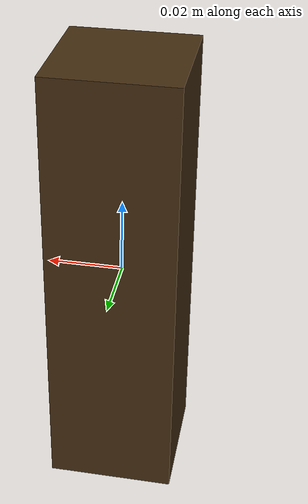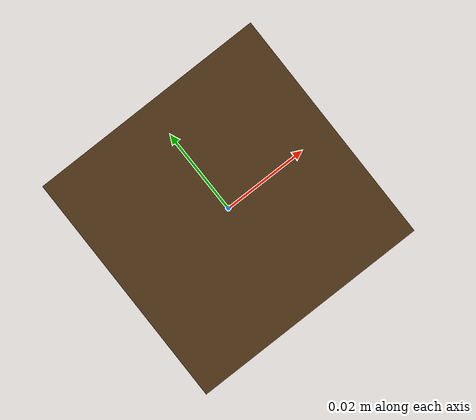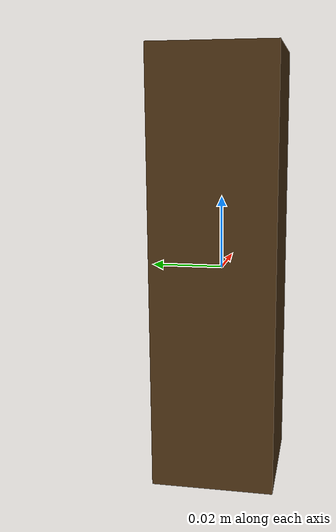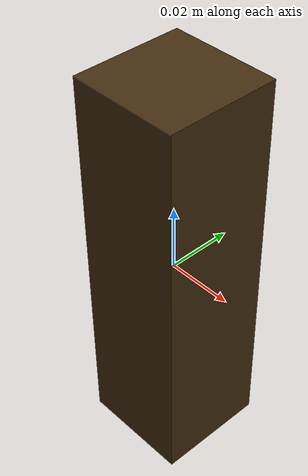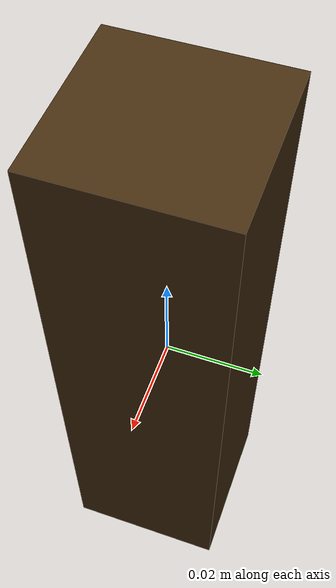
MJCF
<mujoco model="box">
	<compiler inertiafromgeom="true" />
    <asset>
	<texture name="texgeom" type="cube" builtin="flat" mark="cross" width="128" height="128"
		 rgb1="0.6 0.6 0.6" rgb2="0.6 0.6 0.6" markrgb="1 1 1"/>
	<material name='object' texture="texgeom" texuniform="true" rgba=".4 .9 .6 1" />
    </asset>

    <default>
        <default class="shape">
	    <geom type="box" size="0.017 0.017 0.06"/>
	    <default class="collision">
		<geom condim="6" group="0" rgba="0.266754 0.174546 0.0644028 1" />
	    </default>
	    <default class="visual">
		<geom condim="6" group="1" material="object" conaffinity="0" contype="0" />
	    </default>
		</default>
    </default>

    <worldbody>
      <light mode="targetbodycom" target="base_link" directional="false" diffuse=".8 .8 .8" specular="0.3 0.3 0.3" pos="0 0 4.0" dir="0 0 -1" />
      <body name="base_link">
        <freejoint name="root" />
        <inertial pos="0 0 0" mass="0.3" diaginertia="0.00035965472 0.00035965472 0.000053453440"/>
        <geom class="collision" />
        <geom class="visual" />
      </body>
    </worldbody>
</mujoco>
